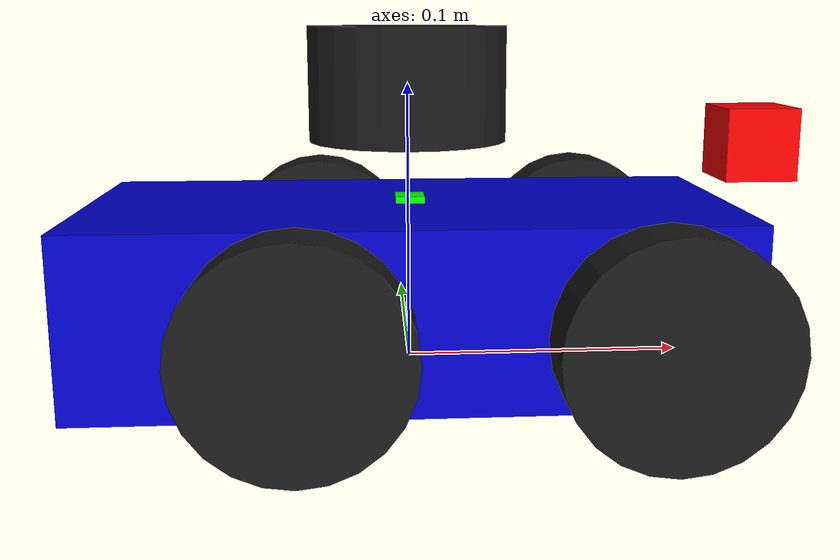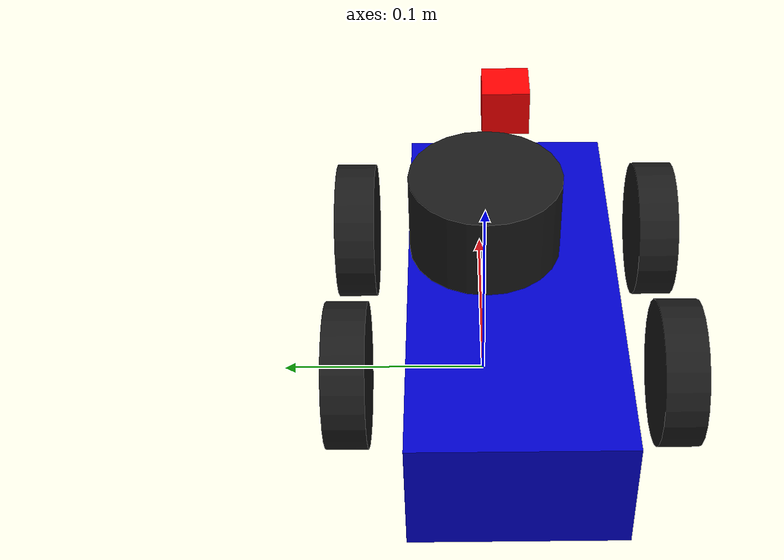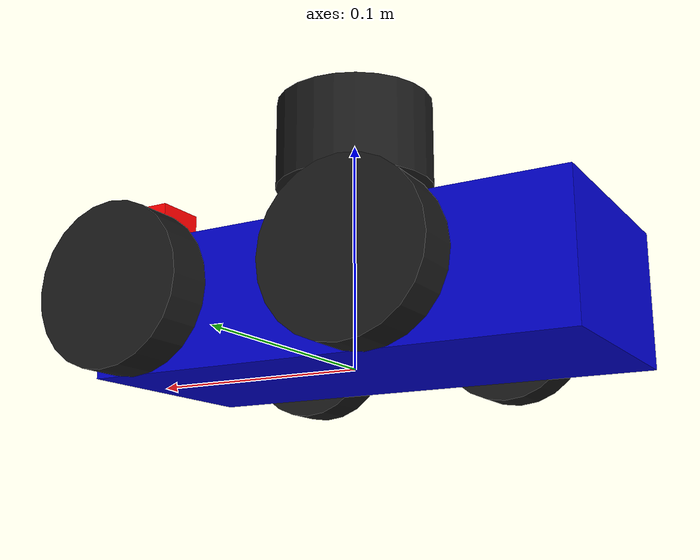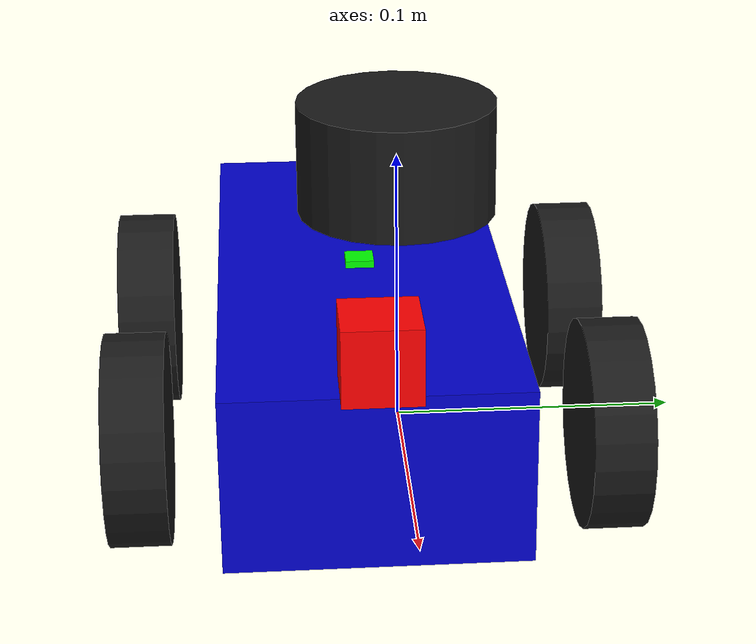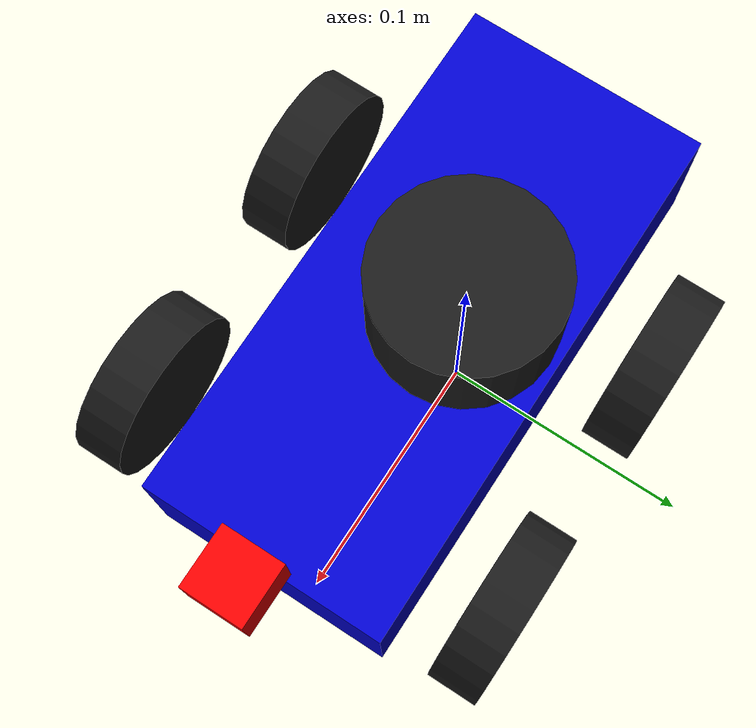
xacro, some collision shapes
<?xml version="1.0"?>
<robot xmlns:xacro="http://www.ros.org/wiki/xacro" name="agriscout">

<xacro:include filename="$(find agriscout_description)/urdf/gazebo.xacro" />

    <link name="base_footprint"/>

    <link name="base_link">
        <visual>
            <origin xyz="-0.11 -0.1 -0.05" rpy="1.57 0 1.57"/>
            <geometry>
                <mesh filename="package://agriscout_description/meshes/chassis.STL" scale="0.001 0.001 0.001"/>
            </geometry>
            <material name="blue">
                <color rgba="0 0 0.8 1"/>
            </material>
        </visual>

        <collision>
            <origin xyz="0 -0.0135 0.03" rpy="0 0 0"/>
            <geometry>
                <box size="0.22 0.10 0.06"/>
            </geometry>
        </collision>

        <inertial>
            <mass value="2.0"/>
            <inertia ixx="0.01" ixy="0" ixz="0" iyy="0.01" iyz="0" izz="0.01"/>
        </inertial>
    </link>

    <joint name="base_joint" type="fixed">
        <parent link="base_footprint"/>
        <child link="base_link"/>
        <origin xyz="0 0 0" rpy="0 0 0"/>
    </joint>

    <link name="left_rear_wheel">
        <visual>
            <origin xyz="0 0 0" rpy="1.57 0 0"/>
            <geometry>
                <cylinder length="0.02" radius="0.035"/>
            </geometry>
            <material name="black">
                <color rgba="0.1 0.1 0.1 1"/>
            </material>
        </visual>
        <collision>
            <origin xyz="0 0 0" rpy="1.57 0 0"/>
            <geometry>
                <cylinder length="0.02" radius="0.035"/>
            </geometry>
        </collision>
        <inertial>
            <mass value="0.2"/>
            <inertia ixx="0.001" ixy="0" ixz="0" iyy="0.001" iyz="0" izz="0.001"/>
        </inertial>
    </link>

    <joint name="left_rear_joint" type="continuous">
        <parent link="base_link"/>
        <child link="left_rear_wheel"/>
        <origin xyz="-0.035 0.065 0.03" rpy="0 0 0"/>
        <axis xyz="0 1 0"/>
        <limit effort="100.0" velocity="100.0"/>
    </joint>

    <link name="left_front_wheel">
        <visual>
            <origin xyz="0 0 0" rpy="1.57 0 0"/>
            <geometry>
                <cylinder length="0.02" radius="0.035"/>
            </geometry>
            <material name="black"/>
        </visual>
        <collision>
            <origin xyz="0 0 0" rpy="1.57 0 0"/>
            <geometry>
                <cylinder length="0.02" radius="0.035"/>
            </geometry>
        </collision>
        <inertial>
            <mass value="0.2"/>
            <inertia ixx="0.001" ixy="0" ixz="0" iyy="0.001" iyz="0" izz="0.001"/>
        </inertial>
    </link>

    <joint name="left_front_joint" type="continuous">
        <parent link="base_link"/>
        <child link="left_front_wheel"/>
        <origin xyz="0.073 0.065 0.03" rpy="0 0 0"/>
        <axis xyz="0 1 0"/>
        <limit effort="100.0" velocity="100.0"/>
    </joint>

    <link name="right_rear_wheel">
        <visual>
            <origin xyz="0 0 0" rpy="1.57 0 0"/>
            <geometry>
                <cylinder length="0.02" radius="0.035"/>
            </geometry>
            <material name="black"/>
        </visual>
        <collision>
            <origin xyz="0 0 0" rpy="1.57 0 0"/>
            <geometry>
                <cylinder length="0.02" radius="0.035"/>
            </geometry>
        </collision>
        <inertial>
            <mass value="0.2"/>
            <inertia ixx="0.001" ixy="0" ixz="0" iyy="0.001" iyz="0" izz="0.001"/>
        </inertial>
    </link>

    <joint name="right_rear_joint" type="continuous">
        <parent link="base_link"/>
        <child link="right_rear_wheel"/>
        <origin xyz="-0.035 -0.09 0.03" rpy="0 0 0"/>
        <axis xyz="0 1 0"/>
        <limit effort="100.0" velocity="100.0"/>
    </joint>

    <link name="right_front_wheel">
        <visual>
            <origin xyz="0 0 0" rpy="1.57 0 0"/>
            <geometry>
                <cylinder length="0.02" radius="0.035"/>
            </geometry>
            <material name="black"/>
        </visual>
        <collision>
            <origin xyz="0 0 0" rpy="1.57 0 0"/>
            <geometry>
                <cylinder length="0.02" radius="0.035"/>
            </geometry>
        </collision>
        <inertial>
            <mass value="0.2"/>
            <inertia ixx="0.001" ixy="0" ixz="0" iyy="0.001" iyz="0" izz="0.001"/>
        </inertial>
    </link>

    <joint name="right_front_joint" type="continuous">
        <parent link="base_link"/>
        <child link="right_front_wheel"/>
        <origin xyz="0.073 -0.09 0.03" rpy="0 0 0"/>
        <axis xyz="0 1 0"/>
        <limit effort="100.0" velocity="100.0"/>
    </joint>

    <link name="camera_link">
        <visual>
            <geometry>
                <box size="0.025 0.025 0.025"/> </geometry>
            <material name="red">
                <color rgba="1 0 0 1"/>
            </material>
        </visual>
        <collision>
             <geometry>
                <box size="0.025 0.025 0.025"/>
            </geometry>
        </collision>
    </link>

    <joint name="camera_joint" type="fixed">
        <parent link="base_link"/>
        <child link="camera_link"/>
        <origin xyz="0.12 -0.0135 0.08" rpy="0 0 0"/>
    </joint>

    <link name="camera_optical_link"/>
    <joint name="camera_optical_joint" type="fixed">
        <parent link="camera_link"/>
        <child link="camera_optical_link"/>
        <origin xyz="0 0 0" rpy="-1.57 0 -1.57"/>
    </joint>

    <link name="imu_link">
        <visual>
            <geometry>
                <box size="0.01 0.01 0.005"/>
            </geometry>
            <material name="green">
                <color rgba="0 1 0 1"/>
            </material>
        </visual>
    </link>

    <joint name="imu_joint" type="fixed">
        <parent link="base_link"/>
        <child link="imu_link"/>
        <origin xyz="0 -0.0135 0.06" rpy="0 0 0"/>
    </joint>

    <link name="lidar_link">
        <visual>
            <geometry>
                <cylinder length="0.04" radius="0.035"/>
            </geometry>
            <material name="black"/>
        </visual>
        <collision>
            <geometry>
                <cylinder length="0.04" radius="0.035"/>
            </geometry>
        </collision>
    </link>

    <joint name="lidar_joint" type="fixed">
        <parent link="base_link"/>
        <child link="lidar_link"/>
        <origin xyz="0 0 0.1" rpy="0 0 0"/> </joint>

</robot>
